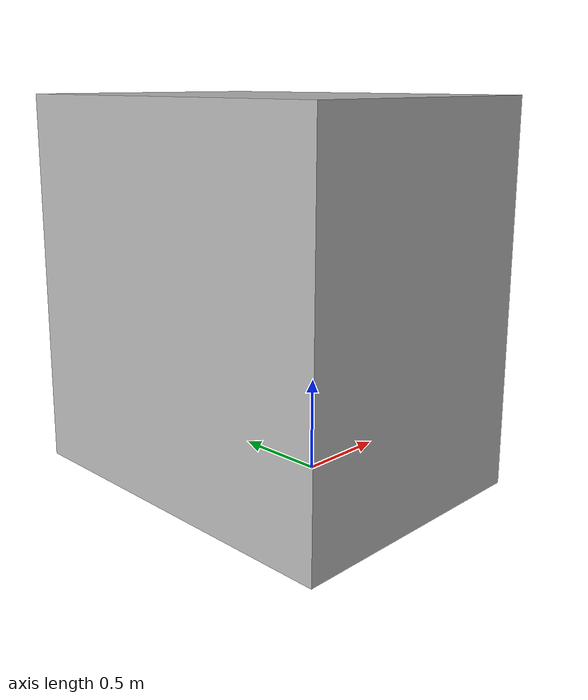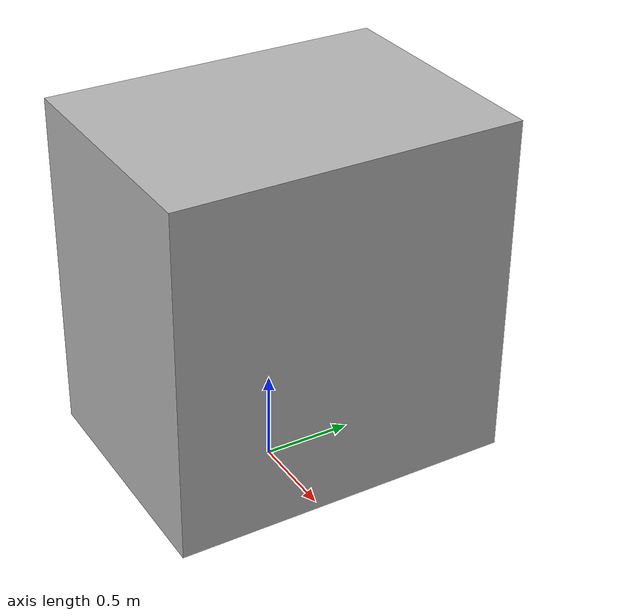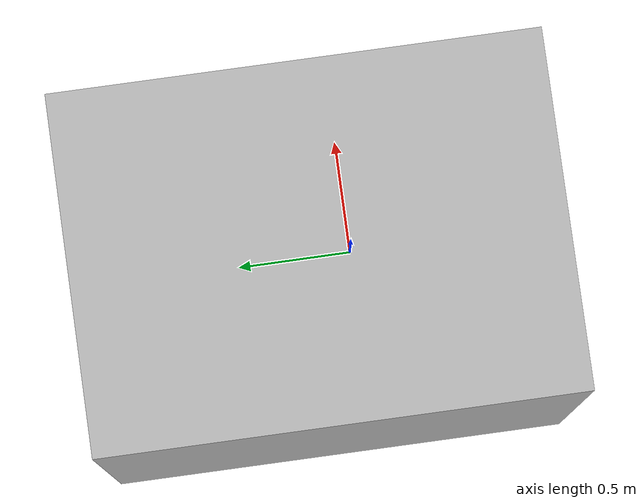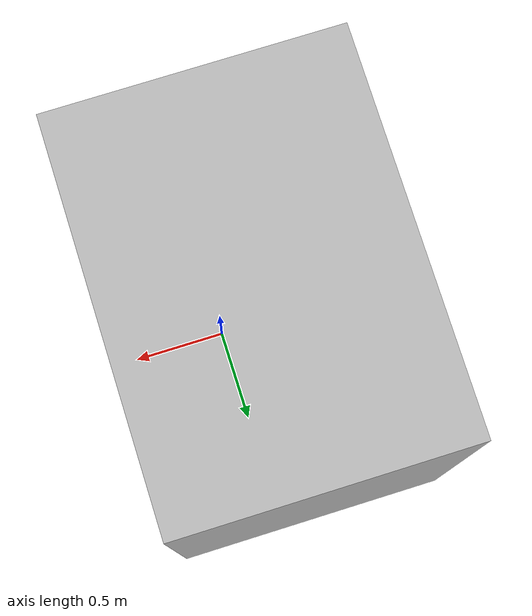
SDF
<?xml version="1.0" ?>
<sdf version="1.5">
	<model name="cell">
		<static>true</static>
		<link name="cell_link">
			<collision name="cell_collision">
				<geometry>
					<mesh>
						<uri>model://cell/meshes/collision_model_new.dae</uri>
					</mesh>
				</geometry>
			</collision>

			<visual name="cell_mesh">
				<cast_shadows>true</cast_shadows>
				<geometry>
					<mesh>
						<uri>model://cell/meshes/visual_cage.dae</uri>
					</mesh>
				</geometry>
			</visual>
		</link>
	</model>
</sdf>
